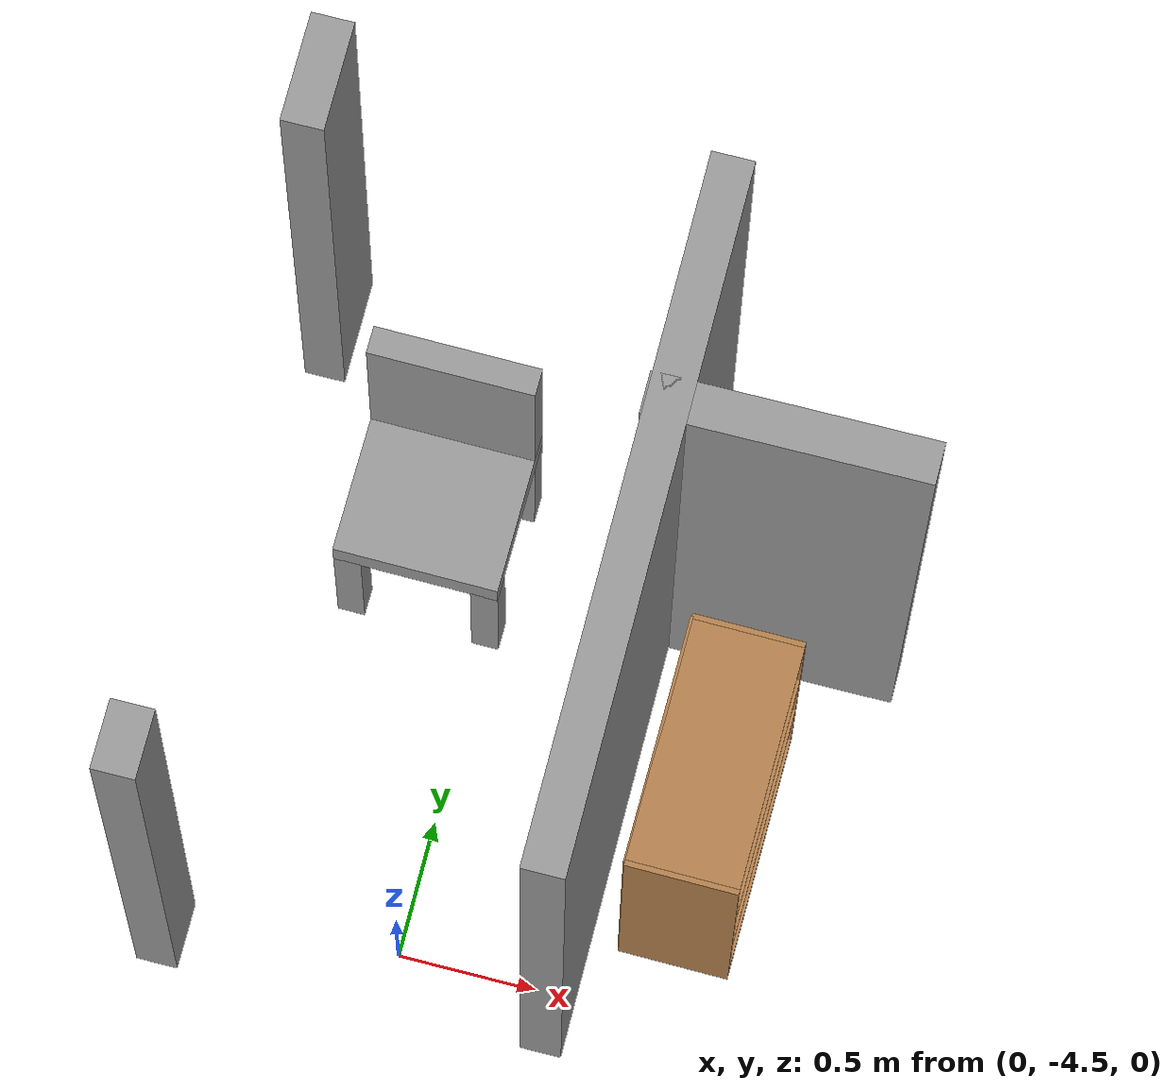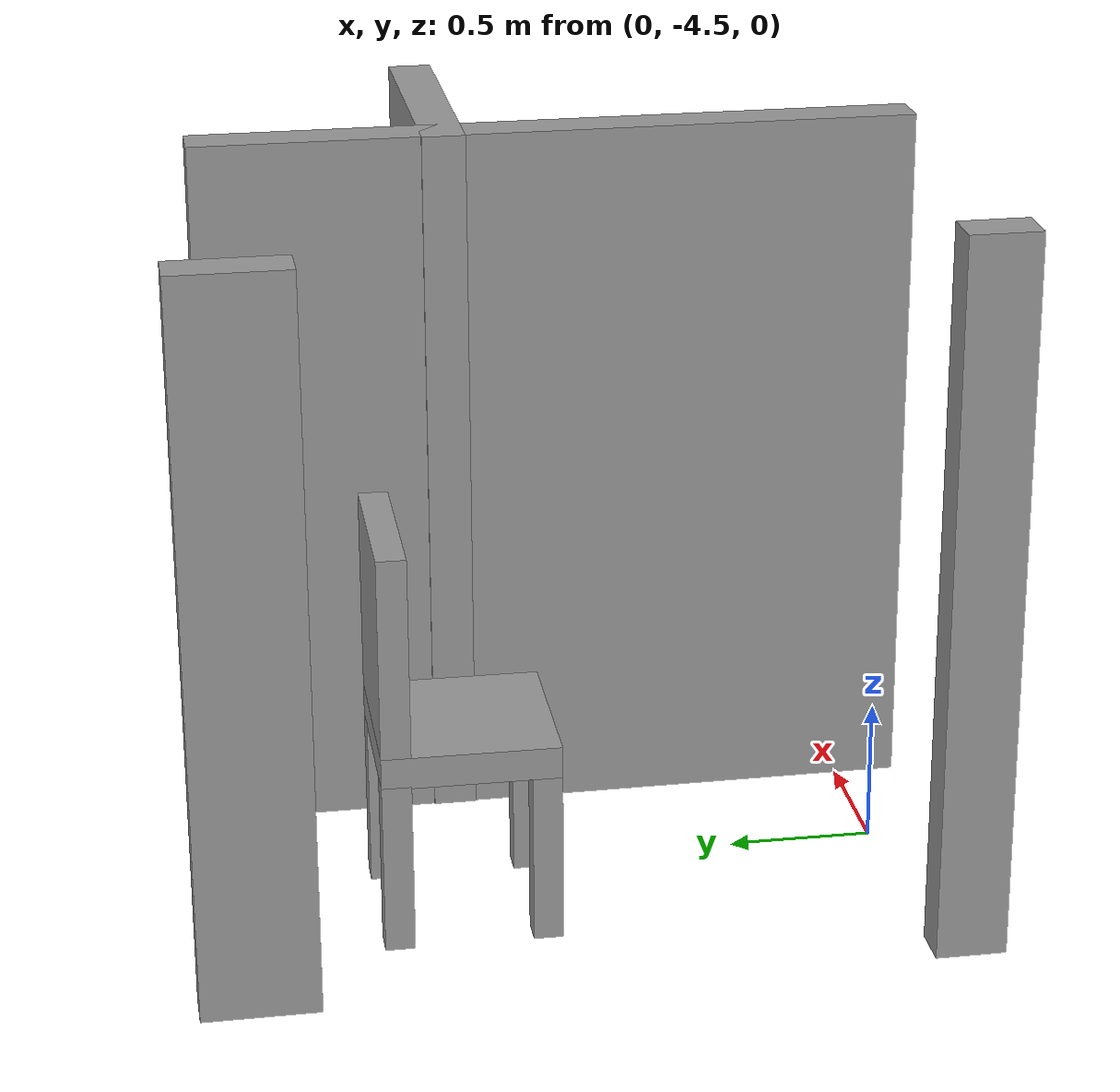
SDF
<sdf version="1.7">
 <world name="default">
  <model name="bookshelf_0_clone">
   <static>1</static>
   <link name="link">
    <inertial><mass>1</mass></inertial>
    <collision name="back">
     <pose>0 0.005 0.6 0 -0 0</pose>
     <geometry><box><size>0.9 0.01 1.2</size></box></geometry>
    </collision>
    <visual name="visual1">
     <pose>0 0.005 0.6 0 -0 0</pose>
     <geometry><box><size>0.9 0.01 1.2</size></box></geometry>
     <material>
      <script><uri>file://media/materials/scripts/gazebo.material</uri><name>Gazebo/Wood</name></script>
     </material>
    </visual>
    <collision name="left_side">
     <pose>0.45 -0.195 0.6 0 -0 0</pose>
     <geometry><box><size>0.02 0.4 1.2</size></box></geometry>
    </collision>
    <visual name="visual2">
     <pose>0.45 -0.195 0.6 0 -0 0</pose>
     <geometry><box><size>0.02 0.4 1.2</size></box></geometry>
     <material>
      <script><uri>file://media/materials/scripts/gazebo.material</uri><name>Gazebo/Wood</name></script>
     </material>
    </visual>
    <collision name="right_side">
     <pose>-0.45 -0.195 0.6 0 -0 0</pose>
     <geometry><box><size>0.02 0.4 1.2</size></box></geometry>
    </collision>
    <visual name="visual3">
     <pose>-0.45 -0.195 0.6 0 -0 0</pose>
     <geometry><box><size>0.02 0.4 1.2</size></box></geometry>
     <material>
      <script><uri>file://media/materials/scripts/gazebo.material</uri><name>Gazebo/Wood</name></script>
     </material>
    </visual>
    <collision name="bottom">
     <pose>0 -0.195 0.03 0 -0 0</pose>
     <geometry><box><size>0.88 0.4 0.06</size></box></geometry>
    </collision>
    <visual name="visual4">
     <pose>0 -0.195 0.03 0 -0 0</pose>
     <geometry><box><size>0.88 0.4 0.06</size></box></geometry>
     <material>
      <script><uri>file://media/materials/scripts/gazebo.material</uri><name>Gazebo/Wood</name></script>
     </material>
    </visual>
    <collision name="top">
     <pose>0 -0.195 1.19 0 -0 0</pose>
     <geometry><box><size>0.88 0.4 0.02</size></box></geometry>
    </collision>
    <visual name="visual5">
     <pose>0 -0.195 1.19 0 -0 0</pose>
     <geometry><box><size>0.88 0.4 0.02</size></box></geometry>
     <material>
      <script><uri>file://media/materials/scripts/gazebo.material</uri><name>Gazebo/Wood</name></script>
     </material>
    </visual>
    <collision name="low_shelf">
     <pose>0 -0.195 0.43 0 -0 0</pose>
     <geometry><box><size>0.88 0.4 0.02</size></box></geometry>
    </collision>
    <visual name="visual6">
     <pose>0 -0.195 0.43 0 -0 0</pose>
     <geometry><box><size>0.88 0.4 0.02</size></box></geometry>
     <material>
      <script><uri>file://media/materials/scripts/gazebo.material</uri><name>Gazebo/Wood</name></script>
     </material>
    </visual>
    <collision name="high_shelf">
     <pose>0 -0.195 0.8 0 -0 0</pose>
     <geometry><box><size>0.88 0.4 0.02</size></box></geometry>
    </collision>
    <visual name="visual7">
     <pose>0 -0.195 0.8 0 -0 0</pose>
     <geometry><box><size>0.88 0.4 0.02</size></box></geometry>
     <material>
      <script><uri>file://media/materials/scripts/gazebo.material</uri><name>Gazebo/Wood</name></script>
     </material>
    </visual>
   </link>
   <pose>0.760692 -3.82832 0 0 -0 1.55988</pose>
  </model>
  <model name="demo_clean">
   <link name="Wall_21">
    <pose>0.573753 -3.46553 0 0 0 -1.5708</pose>
    <visual name="Wall_21_Visual">
     <pose>0 0 1.25 0 -0 0</pose>
     <geometry><box><size>2.5 0.15 2.5</size></box></geometry>
     <material>
      <script><uri>file://media/materials/scripts/gazebo.material</uri><name>Gazebo/Grey</name></script>
      <ambient>1 1 1 1</ambient>
      <shader type="pixel"/>
     </material>
     <meta><layer>0</layer></meta>
    </visual>
    <collision name="Wall_21_Collision">
     <pose>0 0 1.25 0 -0 0</pose>
     <geometry><box><size>2.5 0.15 2.5</size></box></geometry>
     <surface>
      <friction>
       <ode><mu>1</mu><mu2>1</mu2><fdir1>0 0 0</fdir1><slip1>0</slip1><slip2>0</slip2></ode>
       <torsional>
        <coefficient>1</coefficient>
        <patch_radius>0</patch_radius>
        <surface_radius>0</surface_radius>
        <use_patch_radius>1</use_patch_radius>
        <ode><slip>0</slip></ode>
       </torsional>
      </friction>
      <bounce><restitution_coefficient>0</restitution_coefficient><threshold>1e+06</threshold></bounce>
      <contact>
       <collide_without_contact>0</collide_without_contact>
       <collide_without_contact_bitmask>1</collide_without_contact_bitmask>
       <collide_bitmask>1</collide_bitmask>
       <ode>
        <soft_cfm>0</soft_cfm>
        <soft_erp>0.2</soft_erp>
        <kp>1e+13</kp>
        <kd>1</kd>
        <max_vel>0.01</max_vel>
        <min_depth>0</min_depth>
       </ode>
       <bullet>
        <split_impulse>1</split_impulse>
        <split_impulse_penetration_threshold>-0.01</split_impulse_penetration_threshold>
        <soft_cfm>0</soft_cfm>
        <soft_erp>0.2</soft_erp>
        <kp>1e+13</kp>
        <kd>1</kd>
       </bullet>
      </contact>
     </surface>
    </collision>
   </link>
   <link name="Wall_21_clone_0">
    <pose>-0.820336 -2.26773 0 0 0 -1.5708</pose>
    <inertial>
     <inertia><ixx>0</ixx><ixy>0</ixy><ixz>0</ixz><iyy>0</iyy><iyz>0</iyz><izz>0</izz></inertia>
     <mass>0</mass>
    </inertial>
    <visual name="Wall_21_Visual">
     <pose>0 0 1.25 0 -0 0</pose>
     <geometry><box><size>0.394105 0.15 2.5</size></box></geometry>
     <material>
      <script><uri>file://media/materials/scripts/gazebo.material</uri><name>Gazebo/Grey</name></script>
      <ambient>1 1 1 1</ambient>
      <shader type="pixel"/>
     </material>
     <meta><layer>0</layer></meta>
    </visual>
    <collision name="Wall_21_Collision">
     <pose>0 0 1.25 0 -0 0</pose>
     <geometry><box><size>0.394105 0.15 2.5</size></box></geometry>
     <surface>
      <friction>
       <ode><mu>1</mu><mu2>1</mu2><fdir1>0 0 0</fdir1><slip1>0</slip1><slip2>0</slip2></ode>
       <torsional>
        <coefficient>1</coefficient>
        <patch_radius>0</patch_radius>
        <surface_radius>0</surface_radius>
        <use_patch_radius>1</use_patch_radius>
        <ode><slip>0</slip></ode>
       </torsional>
      </friction>
      <bounce><restitution_coefficient>0</restitution_coefficient><threshold>1e+06</threshold></bounce>
      <contact>
       <collide_without_contact>0</collide_without_contact>
       <collide_without_contact_bitmask>1</collide_without_contact_bitmask>
       <collide_bitmask>1</collide_bitmask>
       <ode>
        <soft_cfm>0</soft_cfm>
        <soft_erp>0.2</soft_erp>
        <kp>1e+13</kp>
        <kd>1</kd>
        <max_vel>0.01</max_vel>
        <min_depth>0</min_depth>
       </ode>
       <bullet>
        <split_impulse>1</split_impulse>
        <split_impulse_penetration_threshold>-0.01</split_impulse_penetration_threshold>
        <soft_cfm>0</soft_cfm>
        <soft_erp>0.2</soft_erp>
        <kp>1e+13</kp>
        <kd>1</kd>
       </bullet>
      </contact>
     </surface>
    </collision>
   </link>
   <link name="Wall_21_clone_clone">
    <pose>-0.824993 -4.62184 0 0 0 -1.5708</pose>
    <inertial>
     <inertia><ixx>0</ixx><ixy>0</ixy><ixz>0</ixz><iyy>0</iyy><iyz>0</iyz><izz>0</izz></inertia>
     <mass>0</mass>
    </inertial>
    <visual name="Wall_21_Visual">
     <pose>0 0 1.25 0 -0 0</pose>
     <geometry><box><size>0.240964 0.15 2.5</size></box></geometry>
     <material>
      <script><uri>file://media/materials/scripts/gazebo.material</uri><name>Gazebo/Grey</name></script>
      <ambient>1 1 1 1</ambient>
      <shader type="pixel"/>
     </material>
     <meta><layer>0</layer></meta>
    </visual>
    <collision name="Wall_21_Collision">
     <pose>0 0 1.25 0 -0 0</pose>
     <geometry><box><size>0.240964 0.15 2.5</size></box></geometry>
     <surface>
      <friction>
       <ode><mu>1</mu><mu2>1</mu2><fdir1>0 0 0</fdir1><slip1>0</slip1><slip2>0</slip2></ode>
       <torsional>
        <coefficient>1</coefficient>
        <patch_radius>0</patch_radius>
        <surface_radius>0</surface_radius>
        <use_patch_radius>1</use_patch_radius>
        <ode><slip>0</slip></ode>
       </torsional>
      </friction>
      <bounce><restitution_coefficient>0</restitution_coefficient><threshold>1e+06</threshold></bounce>
      <contact>
       <collide_without_contact>0</collide_without_contact>
       <collide_without_contact_bitmask>1</collide_without_contact_bitmask>
       <collide_bitmask>1</collide_bitmask>
       <ode>
        <soft_cfm>0</soft_cfm>
        <soft_erp>0.2</soft_erp>
        <kp>1e+13</kp>
        <kd>1</kd>
        <max_vel>0.01</max_vel>
        <min_depth>0</min_depth>
       </ode>
       <bullet>
        <split_impulse>1</split_impulse>
        <split_impulse_penetration_threshold>-0.01</split_impulse_penetration_threshold>
        <soft_cfm>0</soft_cfm>
        <soft_erp>0.2</soft_erp>
        <kp>1e+13</kp>
        <kd>1</kd>
       </bullet>
      </contact>
     </surface>
    </collision>
   </link>
   <link name="Wall_23">
    <pose>0.983425 -3.07697 0 0 -0 0</pose>
    <inertial>
     <inertia><ixx>0</ixx><ixy>0</ixy><ixz>0</ixz><iyy>0</iyy><iyz>0</iyz><izz>0</izz></inertia>
     <mass>0</mass>
    </inertial>
    <visual name="Wall_23_Visual">
     <pose>0 0 1.25 0 -0 0</pose>
     <geometry><box><size>0.981708 0.15 2.5</size></box></geometry>
     <material>
      <script><uri>file://media/materials/scripts/gazebo.material</uri><name>Gazebo/Grey</name></script>
      <ambient>1 1 1 1</ambient>
      <shader type="pixel"/>
     </material>
     <meta><layer>0</layer></meta>
    </visual>
    <collision name="Wall_23_Collision">
     <pose>0 0 1.25 0 -0 0</pose>
     <geometry><box><size>0.981708 0.15 2.5</size></box></geometry>
     <surface>
      <friction>
       <ode><mu>1</mu><mu2>1</mu2><fdir1>0 0 0</fdir1><slip1>0</slip1><slip2>0</slip2></ode>
       <torsional>
        <coefficient>1</coefficient>
        <patch_radius>0</patch_radius>
        <surface_radius>0</surface_radius>
        <use_patch_radius>1</use_patch_radius>
        <ode><slip>0</slip></ode>
       </torsional>
      </friction>
      <bounce><restitution_coefficient>0</restitution_coefficient><threshold>1e+06</threshold></bounce>
      <contact>
       <collide_without_contact>0</collide_without_contact>
       <collide_without_contact_bitmask>1</collide_without_contact_bitmask>
       <collide_bitmask>1</collide_bitmask>
       <ode>
        <soft_cfm>0</soft_cfm>
        <soft_erp>0.2</soft_erp>
        <kp>1e+13</kp>
        <kd>1</kd>
        <max_vel>0.01</max_vel>
        <min_depth>0</min_depth>
       </ode>
       <bullet>
        <split_impulse>1</split_impulse>
        <split_impulse_penetration_threshold>-0.01</split_impulse_penetration_threshold>
        <soft_cfm>0</soft_cfm>
        <soft_erp>0.2</soft_erp>
        <kp>1e+13</kp>
        <kd>1</kd>
       </bullet>
      </contact>
     </surface>
    </collision>
   </link>
   <static>1</static>
  </model>
  <model name="simple_chair_clone">
   <link name="link_0_clone">
    <inertial>
     <mass>1</mass>
     <inertia>
      <ixx>0.166667</ixx>
      <ixy>0</ixy>
      <ixz>0</ixz>
      <iyy>0.166667</iyy>
      <iyz>0</iyz>
      <izz>0.166667</izz>
     </inertia>
    </inertial>
    <pose>-0.041667 -0 0.165833 0 -0 0</pose>
    <visual name="visual">
     <geometry><box><size>0.6 0.6 0.11</size></box></geometry>
     <material>
      <lighting>1</lighting>
      <script><uri>file://media/materials/scripts/gazebo.material</uri><name>Gazebo/Grey</name></script>
      <shader type="pixel"><normal_map>__default__</normal_map></shader>
      <ambient>0.3 0.3 0.3 1</ambient>
      <diffuse>0.7 0.7 0.7 1</diffuse>
      <specular>0.01 0.01 0.01 1</specular>
      <emissive>0 0 0 1</emissive>
     </material>
    </visual>
    <collision name="collision">
     <geometry><box><size>0.6 0.6 0.1</size></box></geometry>
     <surface>
      <friction>
       <ode><mu>1</mu><mu2>1</mu2><fdir1>0 0 0</fdir1><slip1>0</slip1><slip2>0</slip2></ode>
       <torsional>
        <coefficient>1</coefficient>
        <patch_radius>0</patch_radius>
        <surface_radius>0</surface_radius>
        <use_patch_radius>1</use_patch_radius>
        <ode><slip>0</slip></ode>
       </torsional>
      </friction>
      <bounce><restitution_coefficient>0</restitution_coefficient><threshold>1e+06</threshold></bounce>
      <contact>
       <collide_without_contact>0</collide_without_contact>
       <collide_without_contact_bitmask>1</collide_without_contact_bitmask>
       <collide_bitmask>1</collide_bitmask>
       <ode>
        <soft_cfm>0</soft_cfm>
        <soft_erp>0.2</soft_erp>
        <kp>1e+13</kp>
        <kd>1</kd>
        <max_vel>0.01</max_vel>
        <min_depth>0</min_depth>
       </ode>
       <bullet>
        <split_impulse>1</split_impulse>
        <split_impulse_penetration_threshold>-0.01</split_impulse_penetration_threshold>
        <soft_cfm>0</soft_cfm>
        <soft_erp>0.2</soft_erp>
        <kp>1e+13</kp>
        <kd>1</kd>
       </bullet>
      </contact>
     </surface>
    </collision>
   </link>
   <link name="link_1_clone">
    <inertial>
     <mass>1</mass>
     <inertia>
      <ixx>0.166667</ixx>
      <ixy>0</ixy>
      <ixz>0</ixz>
      <iyy>0.166667</iyy>
      <iyz>0</iyz>
      <izz>0.166667</izz>
     </inertia>
    </inertial>
    <pose>-0.291667 0.25 -0.184167 0 -0 0</pose>
    <visual name="visual">
     <geometry><box><size>0.1 0.1 0.6</size></box></geometry>
     <material>
      <lighting>1</lighting>
      <script><uri>file://media/materials/scripts/gazebo.material</uri><name>Gazebo/Grey</name></script>
      <shader type="pixel"><normal_map>__default__</normal_map></shader>
      <ambient>0.3 0.3 0.3 1</ambient>
      <diffuse>0.7 0.7 0.7 1</diffuse>
      <specular>0.01 0.01 0.01 1</specular>
      <emissive>0 0 0 1</emissive>
     </material>
    </visual>
    <collision name="collision">
     <geometry><box><size>0.1 0.1 0.6</size></box></geometry>
     <surface>
      <friction>
       <ode><mu>1</mu><mu2>1</mu2><fdir1>0 0 0</fdir1><slip1>0</slip1><slip2>0</slip2></ode>
       <torsional>
        <coefficient>1</coefficient>
        <patch_radius>0</patch_radius>
        <surface_radius>0</surface_radius>
        <use_patch_radius>1</use_patch_radius>
        <ode><slip>0</slip></ode>
       </torsional>
      </friction>
      <bounce><restitution_coefficient>0</restitution_coefficient><threshold>1e+06</threshold></bounce>
      <contact>
       <collide_without_contact>0</collide_without_contact>
       <collide_without_contact_bitmask>1</collide_without_contact_bitmask>
       <collide_bitmask>1</collide_bitmask>
       <ode>
        <soft_cfm>0</soft_cfm>
        <soft_erp>0.2</soft_erp>
        <kp>1e+13</kp>
        <kd>1</kd>
        <max_vel>0.01</max_vel>
        <min_depth>0</min_depth>
       </ode>
       <bullet>
        <split_impulse>1</split_impulse>
        <split_impulse_penetration_threshold>-0.01</split_impulse_penetration_threshold>
        <soft_cfm>0</soft_cfm>
        <soft_erp>0.2</soft_erp>
        <kp>1e+13</kp>
        <kd>1</kd>
       </bullet>
      </contact>
     </surface>
    </collision>
   </link>
   <link name="link_1_clone_0">
    <inertial>
     <mass>1</mass>
     <inertia>
      <ixx>0.166667</ixx>
      <ixy>0</ixy>
      <ixz>0</ixz>
      <iyy>0.166667</iyy>
      <iyz>0</iyz>
      <izz>0.166667</izz>
     </inertia>
    </inertial>
    <pose>0.208333 0.25 -0.184167 0 -0 0</pose>
    <visual name="visual">
     <geometry><box><size>0.1 0.1 0.6</size></box></geometry>
     <material>
      <lighting>1</lighting>
      <script><uri>file://media/materials/scripts/gazebo.material</uri><name>Gazebo/Grey</name></script>
      <shader type="pixel"><normal_map>__default__</normal_map></shader>
      <ambient>0.3 0.3 0.3 1</ambient>
      <diffuse>0.7 0.7 0.7 1</diffuse>
      <specular>0.01 0.01 0.01 1</specular>
      <emissive>0 0 0 1</emissive>
     </material>
    </visual>
    <collision name="collision">
     <geometry><box><size>0.1 0.1 0.6</size></box></geometry>
     <surface>
      <friction>
       <ode><mu>1</mu><mu2>1</mu2><fdir1>0 0 0</fdir1><slip1>0</slip1><slip2>0</slip2></ode>
       <torsional>
        <coefficient>1</coefficient>
        <patch_radius>0</patch_radius>
        <surface_radius>0</surface_radius>
        <use_patch_radius>1</use_patch_radius>
        <ode><slip>0</slip></ode>
       </torsional>
      </friction>
      <bounce><restitution_coefficient>0</restitution_coefficient><threshold>1e+06</threshold></bounce>
      <contact>
       <collide_without_contact>0</collide_without_contact>
       <collide_without_contact_bitmask>1</collide_without_contact_bitmask>
       <collide_bitmask>1</collide_bitmask>
       <ode>
        <soft_cfm>0</soft_cfm>
        <soft_erp>0.2</soft_erp>
        <kp>1e+13</kp>
        <kd>1</kd>
        <max_vel>0.01</max_vel>
        <min_depth>0</min_depth>
       </ode>
       <bullet>
        <split_impulse>1</split_impulse>
        <split_impulse_penetration_threshold>-0.01</split_impulse_penetration_threshold>
        <soft_cfm>0</soft_cfm>
        <soft_erp>0.2</soft_erp>
        <kp>1e+13</kp>
        <kd>1</kd>
       </bullet>
      </contact>
     </surface>
    </collision>
   </link>
   <link name="link_1_clone_1">
    <inertial>
     <mass>1</mass>
     <inertia>
      <ixx>0.166667</ixx>
      <ixy>0</ixy>
      <ixz>0</ixz>
      <iyy>0.166667</iyy>
      <iyz>0</iyz>
      <izz>0.166667</izz>
     </inertia>
    </inertial>
    <pose>0.208333 -0.25 -0.184167 0 -0 0</pose>
    <visual name="visual">
     <geometry><box><size>0.1 0.1 0.6</size></box></geometry>
     <material>
      <lighting>1</lighting>
      <script><uri>file://media/materials/scripts/gazebo.material</uri><name>Gazebo/Grey</name></script>
      <shader type="pixel"><normal_map>__default__</normal_map></shader>
      <ambient>0.3 0.3 0.3 1</ambient>
      <diffuse>0.7 0.7 0.7 1</diffuse>
      <specular>0.01 0.01 0.01 1</specular>
      <emissive>0 0 0 1</emissive>
     </material>
    </visual>
    <collision name="collision">
     <geometry><box><size>0.1 0.1 0.6</size></box></geometry>
     <surface>
      <friction>
       <ode><mu>1</mu><mu2>1</mu2><fdir1>0 0 0</fdir1><slip1>0</slip1><slip2>0</slip2></ode>
       <torsional>
        <coefficient>1</coefficient>
        <patch_radius>0</patch_radius>
        <surface_radius>0</surface_radius>
        <use_patch_radius>1</use_patch_radius>
        <ode><slip>0</slip></ode>
       </torsional>
      </friction>
      <bounce><restitution_coefficient>0</restitution_coefficient><threshold>1e+06</threshold></bounce>
      <contact>
       <collide_without_contact>0</collide_without_contact>
       <collide_without_contact_bitmask>1</collide_without_contact_bitmask>
       <collide_bitmask>1</collide_bitmask>
       <ode>
        <soft_cfm>0</soft_cfm>
        <soft_erp>0.2</soft_erp>
        <kp>1e+13</kp>
        <kd>1</kd>
        <max_vel>0.01</max_vel>
        <min_depth>0</min_depth>
       </ode>
       <bullet>
        <split_impulse>1</split_impulse>
        <split_impulse_penetration_threshold>-0.01</split_impulse_penetration_threshold>
        <soft_cfm>0</soft_cfm>
        <soft_erp>0.2</soft_erp>
        <kp>1e+13</kp>
        <kd>1</kd>
       </bullet>
      </contact>
     </surface>
    </collision>
   </link>
   <link name="link_1_clone_clone">
    <inertial>
     <mass>1</mass>
     <inertia>
      <ixx>0.166667</ixx>
      <ixy>0</ixy>
      <ixz>0</ixz>
      <iyy>0.166667</iyy>
      <iyz>0</iyz>
      <izz>0.166667</izz>
     </inertia>
    </inertial>
    <pose>-0.291667 -0.25 -0.184167 0 -0 0</pose>
    <visual name="visual">
     <geometry><box><size>0.1 0.1 0.6</size></box></geometry>
     <material>
      <lighting>1</lighting>
      <script><uri>file://media/materials/scripts/gazebo.material</uri><name>Gazebo/Grey</name></script>
      <shader type="pixel"><normal_map>__default__</normal_map></shader>
      <ambient>0.3 0.3 0.3 1</ambient>
      <diffuse>0.7 0.7 0.7 1</diffuse>
      <specular>0.01 0.01 0.01 1</specular>
      <emissive>0 0 0 1</emissive>
     </material>
    </visual>
    <collision name="collision">
     <geometry><box><size>0.1 0.1 0.6</size></box></geometry>
     <surface>
      <friction>
       <ode><mu>1</mu><mu2>1</mu2><fdir1>0 0 0</fdir1><slip1>0</slip1><slip2>0</slip2></ode>
       <torsional>
        <coefficient>1</coefficient>
        <patch_radius>0</patch_radius>
        <surface_radius>0</surface_radius>
        <use_patch_radius>1</use_patch_radius>
        <ode><slip>0</slip></ode>
       </torsional>
      </friction>
      <bounce><restitution_coefficient>0</restitution_coefficient><threshold>1e+06</threshold></bounce>
      <contact>
       <collide_without_contact>0</collide_without_contact>
       <collide_without_contact_bitmask>1</collide_without_contact_bitmask>
       <collide_bitmask>1</collide_bitmask>
       <ode>
        <soft_cfm>0</soft_cfm>
        <soft_erp>0.2</soft_erp>
        <kp>1e+13</kp>
        <kd>1</kd>
        <max_vel>0.01</max_vel>
        <min_depth>0</min_depth>
       </ode>
       <bullet>
        <split_impulse>1</split_impulse>
        <split_impulse_penetration_threshold>-0.01</split_impulse_penetration_threshold>
        <soft_cfm>0</soft_cfm>
        <soft_erp>0.2</soft_erp>
        <kp>1e+13</kp>
        <kd>1</kd>
       </bullet>
      </contact>
     </surface>
    </collision>
   </link>
   <link name="link_2_clone">
    <inertial>
     <mass>1</mass>
     <inertia>
      <ixx>0.166667</ixx>
      <ixy>0</ixy>
      <ixz>0</ixz>
      <iyy>0.166667</iyy>
      <iyz>0</iyz>
      <izz>0.166667</izz>
     </inertia>
    </inertial>
    <pose>0.208333 -0 0.570833 0 -0 0</pose>
    <visual name="visual">
     <geometry><box><size>0.1 0.6 0.7</size></box></geometry>
     <material>
      <lighting>1</lighting>
      <script><uri>file://media/materials/scripts/gazebo.material</uri><name>Gazebo/Grey</name></script>
      <shader type="pixel"><normal_map>__default__</normal_map></shader>
      <ambient>0.3 0.3 0.3 1</ambient>
      <diffuse>0.7 0.7 0.7 1</diffuse>
      <specular>0.01 0.01 0.01 1</specular>
      <emissive>0 0 0 1</emissive>
     </material>
    </visual>
    <collision name="collision">
     <geometry><box><size>0.1 0.6 0.7</size></box></geometry>
     <surface>
      <friction>
       <ode><mu>1</mu><mu2>1</mu2><fdir1>0 0 0</fdir1><slip1>0</slip1><slip2>0</slip2></ode>
       <torsional>
        <coefficient>1</coefficient>
        <patch_radius>0</patch_radius>
        <surface_radius>0</surface_radius>
        <use_patch_radius>1</use_patch_radius>
        <ode><slip>0</slip></ode>
       </torsional>
      </friction>
      <bounce><restitution_coefficient>0</restitution_coefficient><threshold>1e+06</threshold></bounce>
      <contact>
       <collide_without_contact>0</collide_without_contact>
       <collide_without_contact_bitmask>1</collide_without_contact_bitmask>
       <collide_bitmask>1</collide_bitmask>
       <ode>
        <soft_cfm>0</soft_cfm>
        <soft_erp>0.2</soft_erp>
        <kp>1e+13</kp>
        <kd>1</kd>
        <max_vel>0.01</max_vel>
        <min_depth>0</min_depth>
       </ode>
       <bullet>
        <split_impulse>1</split_impulse>
        <split_impulse_penetration_threshold>-0.01</split_impulse_penetration_threshold>
        <soft_cfm>0</soft_cfm>
        <soft_erp>0.2</soft_erp>
        <kp>1e+13</kp>
        <kd>1</kd>
       </bullet>
      </contact>
     </surface>
    </collision>
   </link>
   <joint name="link_0_clone_JOINT_0" type="fixed">
    <parent>link_0_clone</parent>
    <child>link_1_clone_clone</child>
    <physics>
     <ode><limit><cfm>0</cfm><erp>0.2</erp></limit><suspension><cfm>0</cfm><erp>0.2</erp></suspension></ode>
    </physics>
   </joint>
   <joint name="link_0_clone_JOINT_1" type="fixed">
    <parent>link_0_clone</parent>
    <child>link_1_clone</child>
    <physics>
     <ode><limit><cfm>0</cfm><erp>0.2</erp></limit><suspension><cfm>0</cfm><erp>0.2</erp></suspension></ode>
    </physics>
   </joint>
   <joint name="link_0_clone_JOINT_2" type="fixed">
    <parent>link_0_clone</parent>
    <child>link_1_clone_1</child>
    <physics>
     <ode><limit><cfm>0</cfm><erp>0.2</erp></limit><suspension><cfm>0</cfm><erp>0.2</erp></suspension></ode>
    </physics>
   </joint>
   <joint name="link_0_clone_JOINT_3" type="fixed">
    <parent>link_0_clone</parent>
    <child>link_2_clone</child>
    <physics>
     <ode><limit><cfm>0</cfm><erp>0.2</erp></limit><suspension><cfm>0</cfm><erp>0.2</erp></suspension></ode>
    </physics>
   </joint>
   <joint name="link_0_clone_JOINT_4" type="fixed">
    <parent>link_0_clone</parent>
    <child>link_1_clone_0</child>
    <physics>
     <ode><limit><cfm>0</cfm><erp>0.2</erp></limit><suspension><cfm>0</cfm><erp>0.2</erp></suspension></ode>
    </physics>
   </joint>
   <static>0</static>
   <pose>-0.24044 -2.96867 0.484167 0 -0 1.55942</pose>
  </model>
 </world>
</sdf>
